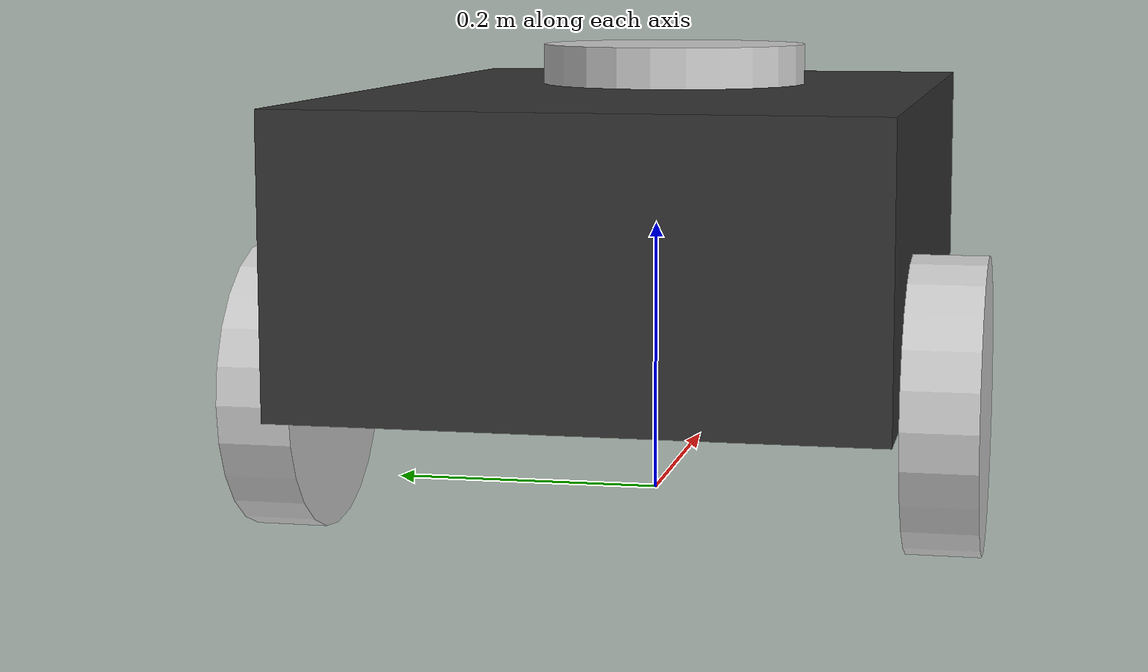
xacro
<?xml version="1.0"?>
<robot name="sgm_robot"
    xmlns:xacro="http://www.ros.org/wiki/xacro">
    <material name="dark_grey">
        <color rgba="0.2 0.2 0.2 1"></color>
    </material>
    <material name="light_grey">
        <color rgba="0.8 0.8 0.8 1"></color>
    </material>

    <xacro:property name="base_length" value="0.6" />
    <xacro:property name="base_width" value="0.4" />
    <xacro:property name="base_height" value="0.2" />

    <xacro:property name="wheel_radius" value="0.1" />
    <xacro:property name="wheel_width" value="0.05" />

    <xacro:property name="camera_length" value="0.01" />
    <xacro:property name="camera_width" value="0.1" />
    <xacro:property name="camera_height" value="0.05" />

    <xacro:property name="laser_radius" value="0.1" />
    <xacro:property name="laser_height" value="0.06" />

    <!-- inertias -->
    <!-- http://wiki.ros.org/urdf/Tutorials/Adding%20Physical%20and%20Collision%20Properties%20to%20a%20URDF%20Model -->
    <xacro:macro name="box_inertia" params="m l w h xyz rpy">
        <inertial>
            <origin xyz="${xyz}" rpy="${rpy}" />
            <mass value="${m}" />
            <inertia ixx="${(m/12) * (h*h + l*l)}" ixy="0" ixz="0" iyy="${(m/12) * (w*w + l*l)}" iyz="0" izz="${(m/12) * (w*w + h*h)}" />
        </inertial>
    </xacro:macro>

    <xacro:macro name="cylinder_inertia" params="m r h xyz rpy">
        <inertial>
            <origin xyz="${xyz}" rpy="${rpy}" />
            <mass value="${m}" />
            <inertia ixx="${(m/12) * (3*r*r + h*h)}" ixy="0" ixz="0" iyy="${(m/12) * (3*r*r + h*h)}" iyz="0" izz="${(m/2) * (r*r)}" />
        </inertial>
    </xacro:macro>

    <xacro:macro name="sphere_inertia" params="m r xyz rpy">
        <inertial>
            <origin xyz="${xyz}" rpy="${rpy}" />
            <mass value="${m}" />
            <inertia ixx="${(2/5) * m * r * r}" ixy="0" ixz="0" iyy="${(2/5) * m * r * r}" iyz="0" izz="${(2/5) * m * r * r}" />
        </inertial>
    </xacro:macro>

    <!-- base -->
    <link name="base_footprint" />

    <link name="base_link">
        <visual>
            <geometry>
                <box size="${base_length} ${base_width} ${base_height}" />
            </geometry>
            <origin xyz="0 0 ${base_height / 2.0}" rpy="0 0 0" />
            <material name="dark_grey" />
        </visual>

        <collision>
            <geometry>
                <box size="${base_length} ${base_width} ${base_height}" />
            </geometry>
            <origin xyz="0 0 ${base_height / 2.0}" rpy="0 0 0" />
        </collision>
        <xacro:box_inertia m="5.0" l="${2*base_length}" w="${2*base_width}" h="${2*base_height}" xyz="0 0 ${base_height / 2.0}" rpy="0 0 0" />
    </link>

    <joint name="base_joint" type="fixed">
        <parent link="base_footprint" />
        <child link="base_link" />
        <origin xyz="0 0 ${wheel_radius}" rpy="0 0 0"/>
    </joint>

    <!-- wheels -->
    <xacro:macro name="wheel_link" params="prefix">
        <link name="${prefix}_wheel_link">
            <visual>
                <geometry>
                    <cylinder radius="${wheel_radius}" length="${wheel_width}" />
                </geometry>
                <origin xyz="0 0 0" rpy="${pi / 2.0} 0 0" />
                <material name="light_grey" />
            </visual>

            <collision>
                <geometry>
                    <cylinder radius="${wheel_radius}" length="${wheel_width}" />
                </geometry>
                <origin xyz="0 0 0" rpy="${pi / 2.0} 0 0" />
            </collision>
            <xacro:cylinder_inertia m="1.0" r="${2*wheel_radius}" h="${2*wheel_width}" xyz="0 0 0" rpy="${pi / 2.0} 0 0" />
        </link>
    </xacro:macro>

    <xacro:wheel_link prefix="right" />
    <xacro:wheel_link prefix="left" />

    <link name="caster_wheel_link">
        <visual>
            <geometry>
                <sphere radius="${wheel_radius / 2.0}" />
            </geometry>
            <origin xyz="0 0 0" rpy="0 0 0" />
            <material name="light_grey" />
        </visual>

        <collision>
            <geometry>
                <sphere radius="${wheel_radius / 2.0}" />
            </geometry>
            <origin xyz="0 0 0" rpy="0 0 0" />
        </collision>
        <xacro:sphere_inertia m="0.5" r="${2*wheel_radius / 2.0}" xyz="0 0 0" rpy="0 0 0" />
    </link>

    <joint name="base_right_wheel_joint" type="continuous">
        <parent link="base_link" />
        <child link="right_wheel_link" />
        <origin xyz="${-base_length / 4.0} ${-(base_width + wheel_width) / 2.0} 0" rpy="0 0 0" />
        <axis xyz="0 1 0" />
    </joint>

    <joint name="base_left_wheel_joint" type="continuous">
        <parent link="base_link" />
        <child link="left_wheel_link" />
        <origin xyz="${-base_length / 4.0} ${(base_width + wheel_width) / 2.0} 0" rpy="0 0 0" />
        <axis xyz="0 1 0" />
    </joint>

    <joint name="base_caster_wheel_joint" type="fixed">
        <parent link="base_link" />
        <child link="caster_wheel_link" />
        <origin xyz="${base_length / 3.0} 0 ${-0.1 / 2.0}" rpy="0 0 0" />
    </joint>

    <!-- camera -->
    <link name="camera_link">
        <visual>
            <geometry>
                <box size="${camera_length} ${camera_width} ${camera_height}" />
            </geometry>
            <material name="light_grey" />
        </visual>

        <collision>
            <geometry>
                <box size="${camera_length} ${camera_width} ${camera_height}" />
            </geometry>
        </collision>
        <xacro:box_inertia m="0.1" l="${camera_length}" w="${camera_width}" h="${camera_height}" xyz="0 0 0" rpy="0 0 0" />
    </link>

    <joint name="base_camera_joint" type="fixed">
        <parent link="base_link" />
        <child link="camera_link" />
        <origin xyz="${(base_length + camera_length) / 2.0} 0 ${base_height / 2.0}" rpy="0 0 0" />
    </joint>

    <!-- laser -->
    <link name="laser_link">
        <visual>
            <geometry>
                <cylinder radius="${laser_radius}" length="${laser_height}" />
            </geometry>
            <material name="light_grey" />
        </visual>

        <collision>
            <geometry>
                <cylinder radius="${laser_radius}" length="${laser_height}" />
            </geometry>
        </collision>
        <xacro:cylinder_inertia m="1.0" r="${2*laser_radius}" h="${2*laser_height}" xyz="0 0 0" rpy="0 0 0" />
    </link>

    <joint name="base_laser_joint" type="fixed">
        <parent link="base_link" />
        <child link="laser_link" />
        <origin xyz="${base_length / 8} 0 ${base_height}" rpy="0 0 0" />
    </joint>

    <gazebo reference="base_link">
        <material>Gazebo/Blue</material>
    </gazebo>

    <gazebo reference="right_wheel_link">
        <material>Gazebo/Grey</material>
    </gazebo>

    <gazebo reference="left_wheel_link">
        <material>Gazebo/Grey</material>
    </gazebo>

    <gazebo reference="caster_wheel_link">
        <material>Gazebo/Grey</material>
        <mu1 value="0.0" />
        <mu2 value="0.0" />
    </gazebo>

    <gazebo reference="laser_link">
        <material>Gazebo/Red</material>
    </gazebo>

    <gazebo reference="camera_link">
        <material>Gazebo/Red</material>
    </gazebo>

    <gazebo>
        <plugin name="diff_drive_controller" filename="libgazebo_ros_diff_drive.so">
            <update_rate>50</update_rate>
            <left_joint>base_left_wheel_joint</left_joint>
            <right_joint>base_right_wheel_joint</right_joint>

            <wheel_separation>0.45</wheel_separation>
            <wheel_diameter>0.2</wheel_diameter>
            <publish_odom>true</publish_odom>
            <publish_odom_tf>true</publish_odom_tf>
            <publish_wheel_tf>true</publish_wheel_tf>
            <odometry_topic>odom</odometry_topic>
            <odometry_frame>odom</odometry_frame>
            <robot_base_frame>base_footprint</robot_base_frame>
        </plugin>
    </gazebo>

    <link name="camera_link_optical" />

    <joint name="camera_optical_joint" type="fixed">
        <origin xyz="0 0 0" rpy="${-pi/2} 0 ${-pi/2}"/>
        <parent link="camera_link"/>
        <child link="camera_link_optical"/>
    </joint>

    <gazebo reference="camera_link">
        <material>Gazebo/Red</material>
        <sensor name="camera_sensor" type="camera">
            <pose>0 0 0 0 0 0</pose>
            <visualize>true</visualize>
            <update_rate>10.0</update_rate>
            <plugin name="camera_controller" filename="libgazebo_ros_camera.so">
                <frame_name>camera_link_optical</frame_name>
            </plugin>
        </sensor>
    </gazebo>

    <link name="laser_link_scan" />

    <joint name="laser_scan_joint" type="fixed">
        <origin xyz="0 0 ${(laser_height/2) + 0.05}" rpy="0 0 0"/>
        <parent link="laser_link"/>
        <child link="laser_link_scan"/>
    </joint>

    <gazebo reference="laser_link_scan">
        <material>Gazebo/Red</material>

        <sensor name="laser" type="ray">
            <pose> 0 0 0 0 0 0 </pose>
            <visualize>true</visualize>
            <update_rate>10</update_rate>
            <ray>
                <scan>
                    <horizontal>
                        <samples>360</samples>
                        <min_angle>-3.14</min_angle>
                        <max_angle>3.14</max_angle>
                    </horizontal>
                </scan>
                <range>
                    <min>0.3</min>
                    <max>12</max>
                </range>
            </ray>
            <plugin name="laser_controller" filename="libgazebo_ros_ray_sensor.so">
                <ros>
                    <argument>~/out:=scan</argument>
                </ros>
                <output_type>sensor_msgs/LaserScan</output_type>
                <frame_name>laser_link_scan</frame_name>
            </plugin>
        </sensor>
    </gazebo>
</robot>
